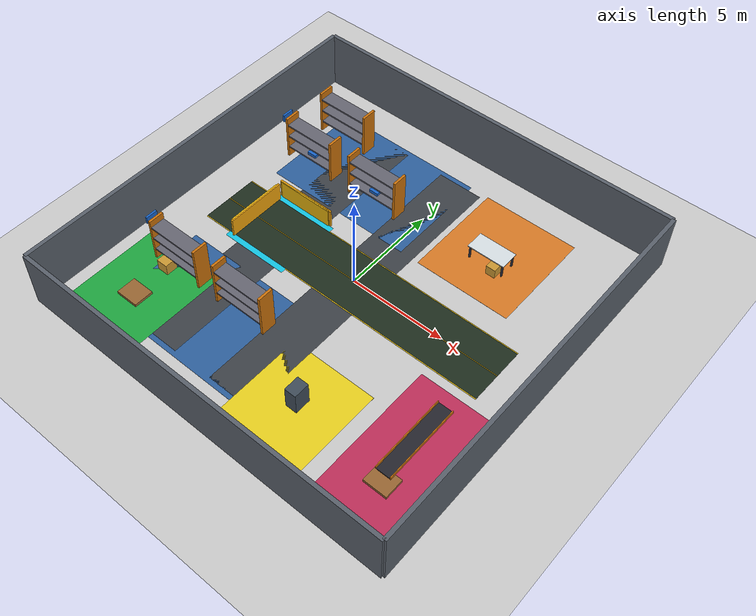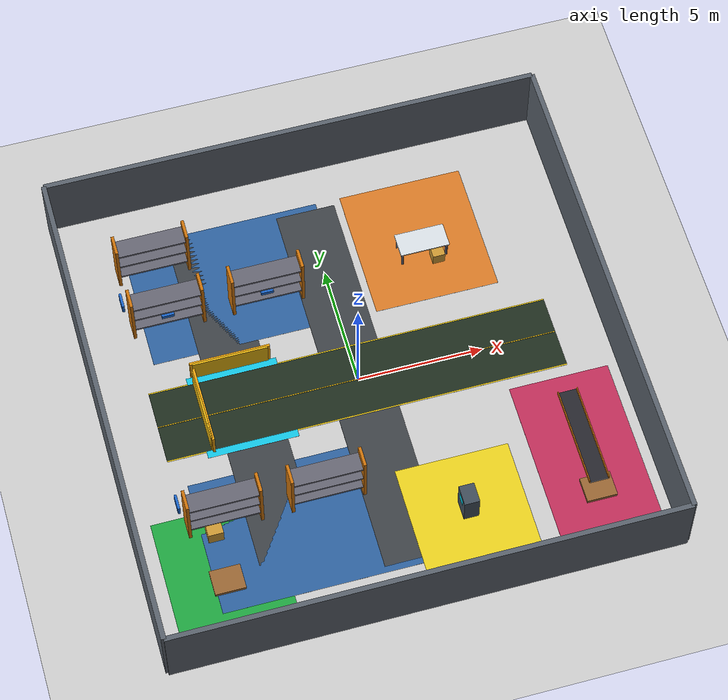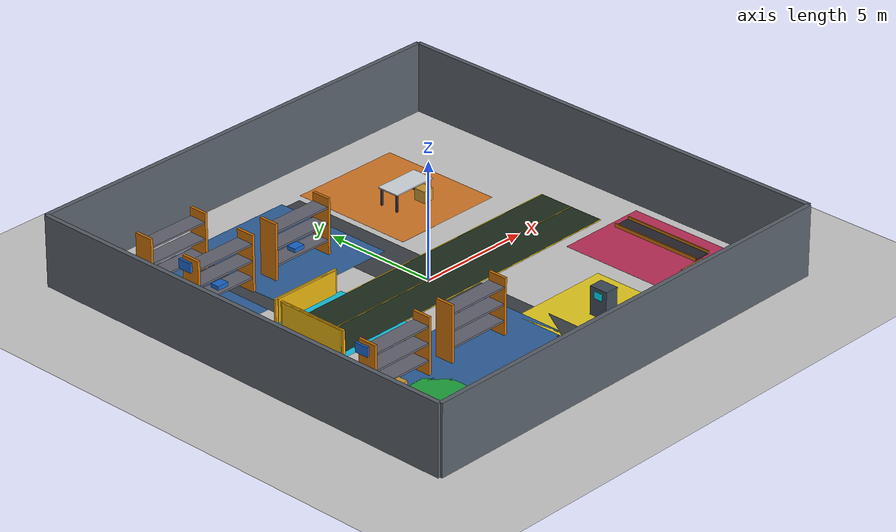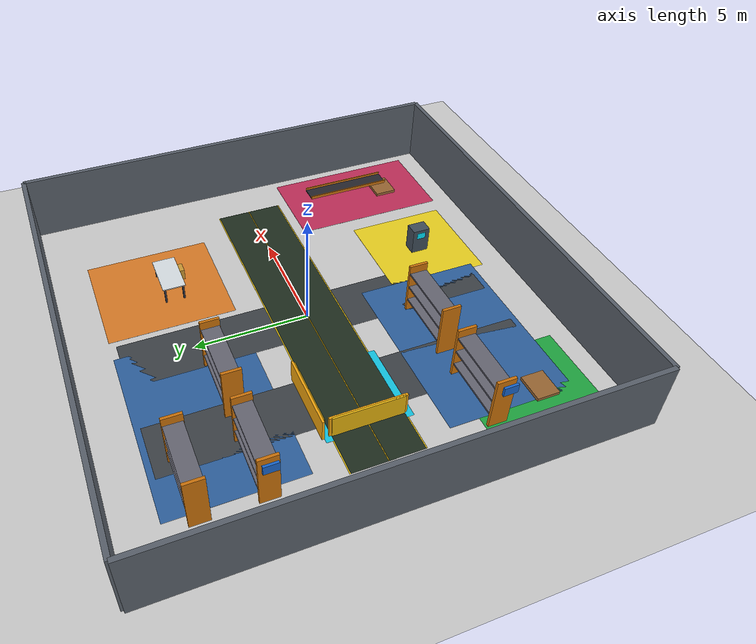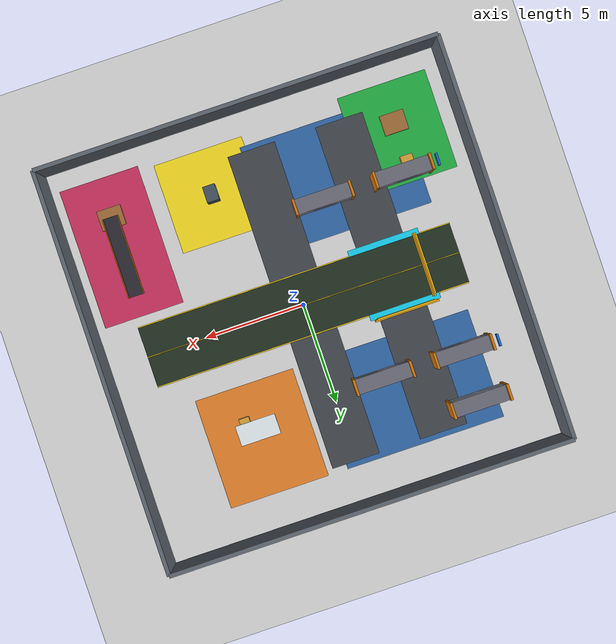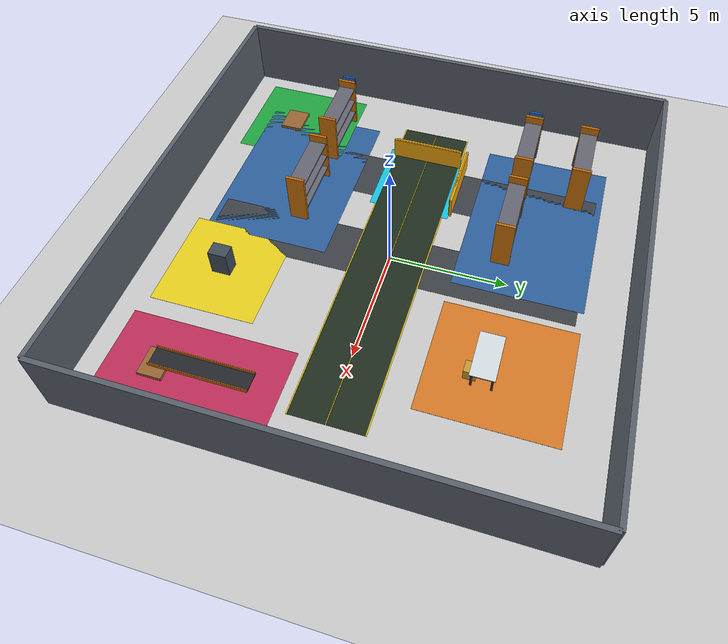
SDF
<?xml version="1.0"?>
<sdf version="1.7">
  <world name="warehouse">

    <!-- PHYSICS & SIMULATION SETTINGS -->
    <physics type="ode">
      <max_step_size>0.002</max_step_size>
      <real_time_update_rate>500</real_time_update_rate>
    </physics>

    <!-- Sun & Ground Plane -->
    <include>
      <uri>model://sun</uri>
    </include>

    <include>
      <uri>model://ground_plane</uri>
    </include>

    <!-- SCENE LIGHTING & AMBIENT ENVIRONMENT -->
    <scene>
      <ambient>0.38 0.38 0.42 1</ambient>
      <background>0.15 0.18 0.22 1</background>
      <shadows>true</shadows>
      <grid>false</grid>
    </scene>

    <!-- Overhead Industrial Directional & Spotlights -->
    <light name="light_main_aisle" type="directional">
      <pose>0 0 12 0 0 0</pose>
      <diffuse>0.88 0.88 0.92 1</diffuse>
      <specular>0.3 0.3 0.3 1</specular>
      <direction>-0.2 0.2 -1.0</direction>
      <cast_shadows>true</cast_shadows>
    </light>

    <light name="light_ur5e_workcell" type="spot">
      <pose>-4.65 0.0 5.5 0 0 0</pose>
      <diffuse>0.95 0.95 1.0 1</diffuse>
      <specular>0.6 0.6 0.6 1</specular>
      <direction>0 0 -1</direction>
      <attenuation>
        <range>12</range>
        <constant>0.4</constant>
        <linear>0.04</linear>
        <quadratic>0.008</quadratic>
      </attenuation>
      <spot>
        <inner_angle>0.8</inner_angle>
        <outer_angle>1.5</outer_angle>
        <falloff>1.0</falloff>
      </spot>
    </light>

    <light name="light_packing_zone" type="spot">
      <pose>4.0 5.0 5.5 0 0 0</pose>
      <diffuse>0.9 0.9 0.95 1</diffuse>
      <specular>0.4 0.4 0.4 1</specular>
      <direction>0 0 -1</direction>
      <attenuation>
        <range>10</range>
        <constant>0.5</constant>
        <linear>0.05</linear>
        <quadratic>0.01</quadratic>
      </attenuation>
      <spot>
        <inner_angle>0.8</inner_angle>
        <outer_angle>1.4</outer_angle>
        <falloff>1.0</falloff>
      </spot>
    </light>

    <!-- BOUNDARY WALLS (20m x 20m PERIMETER) -->
    <model name="wall_left">
      <static>true</static>
      <link name="link">
        <collision name="collision">
          <geometry><box><size>20 0.2 3.0</size></box></geometry>
        </collision>
        <visual name="visual">
          <geometry><box><size>20 0.2 3.0</size></box></geometry>
          <material>
            <ambient>0.25 0.28 0.32 1</ambient>
            <diffuse>0.35 0.38 0.42 1</diffuse>
          </material>
        </visual>
        <pose>0 -10 1.5 0 0 0</pose>
      </link>
    </model>

    <model name="wall_right">
      <static>true</static>
      <link name="link">
        <collision name="collision">
          <geometry><box><size>20 0.2 3.0</size></box></geometry>
        </collision>
        <visual name="visual">
          <geometry><box><size>20 0.2 3.0</size></box></geometry>
          <material>
            <ambient>0.25 0.28 0.32 1</ambient>
            <diffuse>0.35 0.38 0.42 1</diffuse>
          </material>
        </visual>
        <pose>0 10 1.5 0 0 0</pose>
      </link>
    </model>

    <model name="wall_front">
      <static>true</static>
      <link name="link">
        <collision name="collision">
          <geometry><box><size>0.2 20 3.0</size></box></geometry>
        </collision>
        <visual name="visual">
          <geometry><box><size>0.2 20 3.0</size></box></geometry>
          <material>
            <ambient>0.25 0.28 0.32 1</ambient>
            <diffuse>0.35 0.38 0.42 1</diffuse>
          </material>
        </visual>
        <pose>10 0 1.5 0 0 0</pose>
      </link>
    </model>

    <model name="wall_back">
      <static>true</static>
      <link name="link">
        <collision name="collision">
          <geometry><box><size>0.2 20 3.0</size></box></geometry>
        </collision>
        <visual name="visual">
          <geometry><box><size>0.2 20 3.0</size></box></geometry>
          <material>
            <ambient>0.25 0.28 0.32 1</ambient>
            <diffuse>0.35 0.38 0.42 1</diffuse>
          </material>
        </visual>
        <pose>-10 0 1.5 0 0 0</pose>
      </link>
    </model>

    <gui fullscreen="0">
      <camera name="user_camera">
        <pose>-10 -8 9 0 0.55 0.75</pose>
      </camera>
    </gui>

    <!-- SMART FULFILLMENT CENTER — FLOOR LANE MARKINGS -->

    <!-- Main AMR Aisle (Center Corridor: 16m x 3.0m) -->
    <model name="marking_main_aisle">
      <static>true</static>
      <pose>0 0 0.005 0 0 0</pose>
      <link name="link">
        <visual name="visual">
          <geometry><box><size>16.0 3.0 0.002</size></box></geometry>
          <material>
            <ambient>0.15 0.16 0.18 1</ambient>
            <diffuse>0.22 0.24 0.26 1</diffuse>
          </material>
        </visual>
      </link>
    </model>

    <!-- Main Aisle Safety Border Lines (Yellow) -->
    <model name="marking_aisle_line_north">
      <static>true</static>
      <pose>0 1.5 0.007 0 0 0</pose>
      <link name="link">
        <visual name="visual">
          <geometry><box><size>16.0 0.10 0.002</size></box></geometry>
          <material>
            <ambient>0.90 0.75 0.05 1</ambient>
            <diffuse>0.98 0.82 0.08 1</diffuse>
          </material>
        </visual>
      </link>
    </model>

    <model name="marking_aisle_line_south">
      <static>true</static>
      <pose>0 -1.5 0.007 0 0 0</pose>
      <link name="link">
        <visual name="visual">
          <geometry><box><size>16.0 0.10 0.002</size></box></geometry>
          <material>
            <ambient>0.90 0.75 0.05 1</ambient>
            <diffuse>0.98 0.82 0.08 1</diffuse>
          </material>
        </visual>
      </link>
    </model>

    <!-- Cross Aisles -->
    <model name="marking_cross_aisle_1">
      <static>true</static>
      <pose>0 0 0.006 0 0 0</pose>
      <link name="link">
        <visual name="visual">
          <geometry><box><size>2.4 16.0 0.002</size></box></geometry>
          <material>
            <ambient>0.18 0.19 0.22 1</ambient>
            <diffuse>0.24 0.26 0.28 1</diffuse>
          </material>
        </visual>
      </link>
    </model>

    <model name="marking_cross_aisle_2">
      <static>true</static>
      <pose>-4.5 0 0.006 0 0 0</pose>
      <link name="link">
        <visual name="visual">
          <geometry><box><size>2.4 16.0 0.002</size></box></geometry>
          <material>
            <ambient>0.18 0.19 0.22 1</ambient>
            <diffuse>0.24 0.26 0.28 1</diffuse>
          </material>
        </visual>
      </link>
    </model>

    <!-- Receiving Zone Floor Marking (Green Zone) -->
    <model name="marking_receiving_zone">
      <static>true</static>
      <pose>-7.0 -6.5 0.006 0 0 0</pose>
      <link name="link">
        <visual name="visual">
          <geometry><box><size>4.5 5.0 0.002</size></box></geometry>
          <material>
            <ambient>0.08 0.45 0.18 1</ambient>
            <diffuse>0.12 0.65 0.25 1</diffuse>
          </material>
        </visual>
      </link>
    </model>

    <!-- Picking Zone Floor Markings (Blue Accent Stripes) -->
    <model name="marking_picking_zone_north">
      <static>true</static>
      <pose>-3.5 5.5 0.006 0 0 0</pose>
      <link name="link">
        <visual name="visual">
          <geometry><box><size>8.0 5.5 0.002</size></box></geometry>
          <material>
            <ambient>0.12 0.25 0.45 1</ambient>
            <diffuse>0.18 0.38 0.62 1</diffuse>
          </material>
        </visual>
      </link>
    </model>

    <model name="marking_picking_zone_south">
      <static>true</static>
      <pose>-3.5 -5.5 0.006 0 0 0</pose>
      <link name="link">
        <visual name="visual">
          <geometry><box><size>8.0 5.5 0.002</size></box></geometry>
          <material>
            <ambient>0.12 0.25 0.45 1</ambient>
            <diffuse>0.18 0.38 0.62 1</diffuse>
          </material>
        </visual>
      </link>
    </model>

    <!-- Packing Zone Floor Marking (Orange Zone) -->
    <model name="marking_packing_zone">
      <static>true</static>
      <pose>4.0 5.5 0.006 0 0 0</pose>
      <link name="link">
        <visual name="visual">
          <geometry><box><size>5.0 5.5 0.002</size></box></geometry>
          <material>
            <ambient>0.65 0.35 0.10 1</ambient>
            <diffuse>0.85 0.48 0.15 1</diffuse>
          </material>
        </visual>
      </link>
    </model>

    <!-- Delivery Staging Zone Floor Marking (Purple/Red Zone) -->
    <model name="marking_delivery_zone">
      <static>true</static>
      <pose>7.5 -5.5 0.006 0 0 0</pose>
      <link name="link">
        <visual name="visual">
          <geometry><box><size>4.0 7.0 0.002</size></box></geometry>
          <material>
            <ambient>0.55 0.12 0.25 1</ambient>
            <diffuse>0.75 0.18 0.35 1</diffuse>
          </material>
        </visual>
      </link>
    </model>

    <!-- Charging Station Zone Marking (Yellow Hazard Stripes) -->
    <model name="marking_charging_zone">
      <static>true</static>
      <pose>2.5 -6.5 0.006 0 0 0</pose>
      <link name="link">
        <visual name="visual">
          <geometry><box><size>4.5 4.5 0.002</size></box></geometry>
          <material>
            <ambient>0.75 0.65 0.08 1</ambient>
            <diffuse>0.92 0.82 0.12 1</diffuse>
          </material>
        </visual>
      </link>
    </model>

    <!-- TRON1 -> UR5e HANDOVER WORKCELL BOUNDARY (Cyan/Blue High-Contrast) -->
    <model name="marking_handover_workcell">
      <static>true</static>
      <pose>-4.65 0.0 0.008 0 0 0</pose>
      <link name="link">
        <visual name="visual">
          <geometry><box><size>3.6 3.6 0.002</size></box></geometry>
          <material>
            <ambient>0.05 0.55 0.65 1</ambient>
            <diffuse>0.08 0.78 0.90 1</diffuse>
          </material>
        </visual>
      </link>
    </model>

    <!-- Handover Target Pad (Bright Yellow Circle Target) -->
    <model name="marking_handover_target_pad">
      <static>true</static>
      <pose>-4.65 0.0 0.010 0 0 0</pose>
      <link name="link">
        <visual name="visual">
          <geometry><cylinder><radius>0.48</radius><length>0.004</length></cylinder></geometry>
          <material>
            <ambient>0.95 0.85 0.05 1</ambient>
            <diffuse>1.00 0.90 0.10 1</diffuse>
          </material>
        </visual>
      </link>
    </model>

    <!-- INDUSTRIAL SHELVES & RACK SYSTEMS (PICKING & STORAGE ZONES) -->

    <!-- Rack Row A1 (-6.5, 4.5) -->
    <model name="shelf_a1">
      <static>true</static>
      <pose>-6.5 4.5 0 0 0 0</pose>
      <link name="collision_link">
        <collision name="collision">
          <geometry><box><size>3.0 0.8 2.4</size></box></geometry>
        </collision>
      </link>
      <link name="frame_left"><visual name="visual"><geometry><box><size>0.12 0.8 2.4</size></box></geometry><pose>-1.4 0 1.2 0 0 0</pose><material><ambient>0.80 0.45 0.04 1</ambient></material></visual></link>
      <link name="frame_right"><visual name="visual"><geometry><box><size>0.12 0.8 2.4</size></box></geometry><pose>1.4 0 1.2 0 0 0</pose><material><ambient>0.80 0.45 0.04 1</ambient></material></visual></link>
      <link name="shelf_beam_1"><visual name="visual"><geometry><box><size>2.8 0.75 0.08</size></box></geometry><pose>0 0 0.6 0 0 0</pose><material><ambient>0.4 0.4 0.45 1</ambient></material></visual></link>
      <link name="shelf_beam_2"><visual name="visual"><geometry><box><size>2.8 0.75 0.08</size></box></geometry><pose>0 0 1.3 0 0 0</pose><material><ambient>0.4 0.4 0.45 1</ambient></material></visual></link>
      <link name="shelf_beam_3"><visual name="visual"><geometry><box><size>2.8 0.75 0.08</size></box></geometry><pose>0 0 2.0 0 0 0</pose><material><ambient>0.4 0.4 0.45 1</ambient></material></visual></link>
    </model>

    <!-- Rack Row A2 (-2.5, 4.5) -->
    <model name="shelf_a2">
      <static>true</static>
      <pose>-2.5 4.5 0 0 0 0</pose>
      <link name="collision_link">
        <collision name="collision">
          <geometry><box><size>3.0 0.8 2.4</size></box></geometry>
        </collision>
      </link>
      <link name="frame_left"><visual name="visual"><geometry><box><size>0.12 0.8 2.4</size></box></geometry><pose>-1.4 0 1.2 0 0 0</pose><material><ambient>0.80 0.45 0.04 1</ambient></material></visual></link>
      <link name="frame_right"><visual name="visual"><geometry><box><size>0.12 0.8 2.4</size></box></geometry><pose>1.4 0 1.2 0 0 0</pose><material><ambient>0.80 0.45 0.04 1</ambient></material></visual></link>
      <link name="shelf_beam_1"><visual name="visual"><geometry><box><size>2.8 0.75 0.08</size></box></geometry><pose>0 0 0.6 0 0 0</pose><material><ambient>0.4 0.4 0.45 1</ambient></material></visual></link>
      <link name="shelf_beam_2"><visual name="visual"><geometry><box><size>2.8 0.75 0.08</size></box></geometry><pose>0 0 1.3 0 0 0</pose><material><ambient>0.4 0.4 0.45 1</ambient></material></visual></link>
      <link name="shelf_beam_3"><visual name="visual"><geometry><box><size>2.8 0.75 0.08</size></box></geometry><pose>0 0 2.0 0 0 0</pose><material><ambient>0.4 0.4 0.45 1</ambient></material></visual></link>
    </model>

    <!-- Rack Row A3 (-6.5, 7.0) -->
    <model name="shelf_a3">
      <static>true</static>
      <pose>-6.5 7.0 0 0 0 0</pose>
      <link name="collision_link">
        <collision name="collision">
          <geometry><box><size>3.0 0.8 2.4</size></box></geometry>
        </collision>
      </link>
      <link name="frame_left"><visual name="visual"><geometry><box><size>0.12 0.8 2.4</size></box></geometry><pose>-1.4 0 1.2 0 0 0</pose><material><ambient>0.80 0.45 0.04 1</ambient></material></visual></link>
      <link name="frame_right"><visual name="visual"><geometry><box><size>0.12 0.8 2.4</size></box></geometry><pose>1.4 0 1.2 0 0 0</pose><material><ambient>0.80 0.45 0.04 1</ambient></material></visual></link>
      <link name="shelf_beam_1"><visual name="visual"><geometry><box><size>2.8 0.75 0.08</size></box></geometry><pose>0 0 0.6 0 0 0</pose><material><ambient>0.4 0.4 0.45 1</ambient></material></visual></link>
      <link name="shelf_beam_2"><visual name="visual"><geometry><box><size>2.8 0.75 0.08</size></box></geometry><pose>0 0 1.3 0 0 0</pose><material><ambient>0.4 0.4 0.45 1</ambient></material></visual></link>
      <link name="shelf_beam_3"><visual name="visual"><geometry><box><size>2.8 0.75 0.08</size></box></geometry><pose>0 0 2.0 0 0 0</pose><material><ambient>0.4 0.4 0.45 1</ambient></material></visual></link>
    </model>

    <!-- Rack Row B1 (-6.5, -4.5) -->
    <model name="shelf_b1">
      <static>true</static>
      <pose>-6.5 -4.5 0 0 0 0</pose>
      <link name="collision_link">
        <collision name="collision">
          <geometry><box><size>3.0 0.8 2.4</size></box></geometry>
        </collision>
      </link>
      <link name="frame_left"><visual name="visual"><geometry><box><size>0.12 0.8 2.4</size></box></geometry><pose>-1.4 0 1.2 0 0 0</pose><material><ambient>0.80 0.45 0.04 1</ambient></material></visual></link>
      <link name="frame_right"><visual name="visual"><geometry><box><size>0.12 0.8 2.4</size></box></geometry><pose>1.4 0 1.2 0 0 0</pose><material><ambient>0.80 0.45 0.04 1</ambient></material></visual></link>
      <link name="shelf_beam_1"><visual name="visual"><geometry><box><size>2.8 0.75 0.08</size></box></geometry><pose>0 0 0.6 0 0 0</pose><material><ambient>0.4 0.4 0.45 1</ambient></material></visual></link>
      <link name="shelf_beam_2"><visual name="visual"><geometry><box><size>2.8 0.75 0.08</size></box></geometry><pose>0 0 1.3 0 0 0</pose><material><ambient>0.4 0.4 0.45 1</ambient></material></visual></link>
      <link name="shelf_beam_3"><visual name="visual"><geometry><box><size>2.8 0.75 0.08</size></box></geometry><pose>0 0 2.0 0 0 0</pose><material><ambient>0.4 0.4 0.45 1</ambient></material></visual></link>
    </model>

    <!-- Rack Row B2 (-2.5, -4.5) -->
    <model name="shelf_b2">
      <static>true</static>
      <pose>-2.5 -4.5 0 0 0 0</pose>
      <link name="collision_link">
        <collision name="collision">
          <geometry><box><size>3.0 0.8 2.4</size></box></geometry>
        </collision>
      </link>
      <link name="frame_left"><visual name="visual"><geometry><box><size>0.12 0.8 2.4</size></box></geometry><pose>-1.4 0 1.2 0 0 0</pose><material><ambient>0.80 0.45 0.04 1</ambient></material></visual></link>
      <link name="frame_right"><visual name="visual"><geometry><box><size>0.12 0.8 2.4</size></box></geometry><pose>1.4 0 1.2 0 0 0</pose><material><ambient>0.80 0.45 0.04 1</ambient></material></visual></link>
      <link name="shelf_beam_1"><visual name="visual"><geometry><box><size>2.8 0.75 0.08</size></box></geometry><pose>0 0 0.6 0 0 0</pose><material><ambient>0.4 0.4 0.45 1</ambient></material></visual></link>
      <link name="shelf_beam_2"><visual name="visual"><geometry><box><size>2.8 0.75 0.08</size></box></geometry><pose>0 0 1.3 0 0 0</pose><material><ambient>0.4 0.4 0.45 1</ambient></material></visual></link>
      <link name="shelf_beam_3"><visual name="visual"><geometry><box><size>2.8 0.75 0.08</size></box></geometry><pose>0 0 2.0 0 0 0</pose><material><ambient>0.4 0.4 0.45 1</ambient></material></visual></link>
    </model>

    <!-- Rack Sign Markers -->
    <model name="sign_rack_a">
      <static>true</static>
      <pose>-8.2 4.5 2.2 0 0 0</pose>
      <link name="link">
        <visual name="visual">
          <geometry><box><size>0.1 0.6 0.4</size></box></geometry>
          <material><ambient>0.1 0.4 0.8 1</ambient></material>
        </visual>
      </link>
    </model>

    <model name="sign_rack_b">
      <static>true</static>
      <pose>-8.2 -4.5 2.2 0 0 0</pose>
      <link name="link">
        <visual name="visual">
          <geometry><box><size>0.1 0.6 0.4</size></box></geometry>
          <material><ambient>0.1 0.4 0.8 1</ambient></material>
        </visual>
      </link>
    </model>

    <!-- WORKSTATION TABLES, CONVEYOR & SAFETY GUARD RAILS -->

    <!-- Packing Table (Packing Zone x=4.0, y=5.0) -->
    <model name="table_packing">
      <static>true</static>
      <pose>4.0 5.0 0.0 0 0 0</pose>
      <link name="link">
        <collision name="collision">
          <geometry><box><size>2.0 1.0 0.8</size></box></geometry>
          <pose>0 0 0.4 0 0 0</pose>
        </collision>
        <visual name="table_top">
          <geometry><box><size>2.0 1.0 0.05</size></box></geometry>
          <pose>0 0 0.775 0 0 0</pose>
          <material>
            <ambient>0.70 0.72 0.75 1</ambient>
            <diffuse>0.85 0.88 0.90 1</diffuse>
          </material>
        </visual>
        <visual name="table_leg_1"><geometry><box><size>0.08 0.08 0.75</size></box></geometry><pose>-0.9 -0.4 0.375 0 0 0</pose><material><ambient>0.2 0.2 0.25 1</ambient></material></visual>
        <visual name="table_leg_2"><geometry><box><size>0.08 0.08 0.75</size></box></geometry><pose>0.9 -0.4 0.375 0 0 0</pose><material><ambient>0.2 0.2 0.25 1</ambient></material></visual>
        <visual name="table_leg_3"><geometry><box><size>0.08 0.08 0.75</size></box></geometry><pose>-0.9 0.4 0.375 0 0 0</pose><material><ambient>0.2 0.2 0.25 1</ambient></material></visual>
        <visual name="table_leg_4"><geometry><box><size>0.08 0.08 0.75</size></box></geometry><pose>0.9 0.4 0.375 0 0 0</pose><material><ambient>0.2 0.2 0.25 1</ambient></material></visual>
      </link>
    </model>

    <!-- Outbound Conveyor Model (Delivery Zone x=7.5, y=-5.0) -->
    <model name="conveyor_delivery">
      <static>true</static>
      <pose>7.5 -5.0 0.0 0 0 1.5708</pose>
      <link name="link">
        <collision name="collision">
          <geometry><box><size>4.0 0.8 0.65</size></box></geometry>
          <pose>0 0 0.325 0 0 0</pose>
        </collision>
        <visual name="belt">
          <geometry><box><size>4.0 0.7 0.04</size></box></geometry>
          <pose>0 0 0.63 0 0 0</pose>
          <material>
            <ambient>0.10 0.10 0.12 1</ambient>
            <diffuse>0.15 0.15 0.18 1</diffuse>
          </material>
        </visual>
        <visual name="side_rail_left"><geometry><box><size>4.0 0.04 0.15</size></box></geometry><pose>0 -0.38 0.68 0 0 0</pose><material><ambient>0.8 0.45 0.05 1</ambient></material></visual>
        <visual name="side_rail_right"><geometry><box><size>4.0 0.04 0.15</size></box></geometry><pose>0 0.38 0.68 0 0 0</pose><material><ambient>0.8 0.45 0.05 1</ambient></material></visual>
      </link>
    </model>

    <!-- AMR Dock Charger (Charging Station x=2.5, y=-6.5) -->
    <model name="amr_charger_dock">
      <static>true</static>
      <pose>2.5 -6.5 0.0 0 0 0</pose>
      <link name="link">
        <collision name="collision">
          <geometry><box><size>0.6 0.8 1.2</size></box></geometry>
          <pose>0 0 0.6 0 0 0</pose>
        </collision>
        <visual name="housing">
          <geometry><box><size>0.6 0.8 1.2</size></box></geometry>
          <pose>0 0 0.6 0 0 0</pose>
          <material>
            <ambient>0.15 0.18 0.22 1</ambient>
            <diffuse>0.25 0.30 0.35 1</diffuse>
          </material>
        </visual>
        <visual name="screen">
          <geometry><box><size>0.02 0.4 0.3</size></box></geometry>
          <pose>-0.301 0 0.9 0 0 0</pose>
          <material>
            <ambient>0.0 0.8 0.9 1</ambient>
            <diffuse>0.0 0.9 1.0 1</diffuse>
          </material>
        </visual>
      </link>
    </model>

    <!-- Safety Barriers around UR5e Workcell -->
    <model name="safety_barrier_west">
      <static>true</static>
      <pose>-6.2 0.0 0.0 0 0 1.5708</pose>
      <link name="link">
        <collision name="collision"><geometry><box><size>3.0 0.1 1.0</size></box></geometry><pose>0 0 0.5 0 0 0</pose></collision>
        <visual name="rail"><geometry><box><size>3.0 0.08 1.0</size></box></geometry><pose>0 0 0.5 0 0 0</pose><material><ambient>0.9 0.7 0.05 1</ambient></material></visual>
      </link>
    </model>

    <model name="safety_barrier_north">
      <static>true</static>
      <pose>-4.65 1.8 0.0 0 0 0</pose>
      <link name="link">
        <collision name="collision"><geometry><box><size>3.0 0.1 1.0</size></box></geometry><pose>0 0 0.5 0 0 0</pose></collision>
        <visual name="rail"><geometry><box><size>3.0 0.08 1.0</size></box></geometry><pose>0 0 0.5 0 0 0</pose><material><ambient>0.9 0.7 0.05 1</ambient></material></visual>
      </link>
    </model>

    <!-- STAGING OBJECTS, PALLETS, TOTES & CARGO BOXES -->

    <!-- Pallets -->
    <model name="pallet_1">
      <static>true</static>
      <pose>-7.0 -7.0 0.0 0 0 0</pose>
      <link name="link">
        <collision name="collision"><geometry><box><size>1.2 1.0 0.15</size></box></geometry><pose>0 0 0.075 0 0 0</pose></collision>
        <visual name="visual"><geometry><box><size>1.2 1.0 0.15</size></box></geometry><pose>0 0 0.075 0 0 0</pose><material><ambient>0.6 0.4 0.2 1</ambient></material></visual>
      </link>
    </model>

    <model name="pallet_2">
      <static>true</static>
      <pose>7.5 -7.0 0.0 0 0 0</pose>
      <link name="link">
        <collision name="collision"><geometry><box><size>1.2 1.0 0.15</size></box></geometry><pose>0 0 0.075 0 0 0</pose></collision>
        <visual name="visual"><geometry><box><size>1.2 1.0 0.15</size></box></geometry><pose>0 0 0.075 0 0 0</pose><material><ambient>0.6 0.4 0.2 1</ambient></material></visual>
      </link>
    </model>

    <!-- Industrial Totes -->
    <model name="tote_1">
      <static>true</static>
      <pose>-6.5 4.5 0.65 0 0 0</pose>
      <link name="link">
        <visual name="visual"><geometry><box><size>0.5 0.4 0.3</size></box></geometry><material><ambient>0.1 0.4 0.8 1</ambient></material></visual>
      </link>
    </model>

    <model name="tote_2">
      <static>true</static>
      <pose>-2.5 4.5 0.65 0 0 0</pose>
      <link name="link">
        <visual name="visual"><geometry><box><size>0.5 0.4 0.3</size></box></geometry><material><ambient>0.1 0.4 0.8 1</ambient></material></visual>
      </link>
    </model>

    <!-- Cargo Cardboard Boxes -->
    <model name="box_1">
      <static>true</static>
      <pose>-7.0 -5.0 0.3 0 0 0</pose>
      <link name="link">
        <collision name="collision"><geometry><box><size>0.6 0.6 0.6</size></box></geometry></collision>
        <visual name="visual"><geometry><box><size>0.6 0.6 0.6</size></box></geometry><material><ambient>0.80 0.60 0.20 1</ambient></material></visual>
      </link>
    </model>

    <model name="box_2">
      <static>true</static>
      <pose>4.5 4.5 0.3 0 0 0</pose>
      <link name="link">
        <collision name="collision"><geometry><box><size>0.5 0.5 0.5</size></box></geometry></collision>
        <visual name="visual"><geometry><box><size>0.5 0.5 0.5</size></box></geometry><material><ambient>0.80 0.60 0.20 1</ambient></material></visual>
      </link>
    </model>

    <!-- ROBOT LANE / SAFETY ZONE -->
    <model name="marking_robot_lane">
      <static>true</static>
      <pose>0 0 0.012 0 0 0</pose>
      <link name="link">
        <visual name="visual">
          <geometry><box><size>16.0 3.0 0.003</size></box></geometry>
          <material><ambient>0.12 0.18 0.12 1</ambient></material>
        </visual>
      </link>
    </model>

    <model name="marking_robot_lane_center">
      <static>true</static>
      <pose>0 0 0.016 0 0 0</pose>
      <link name="link">
        <visual name="visual">
          <geometry><box><size>16.0 0.035 0.004</size></box></geometry>
          <material><ambient>0.95 0.75 0.05 1</ambient></material>
        </visual>
      </link>
    </model>

    <model name="safety_zone_handover_west">
      <static>true</static>
      <pose>-6.15 0 0.5 0 0 1.5708</pose>
      <link name="link">
        <visual name="visual">
          <geometry><box><size>3.2 0.10 1.0</size></box></geometry>
          <material><ambient>0.95 0.65 0.05 1</ambient></material>
        </visual>
      </link>
    </model>

    <model name="safety_zone_handover_north">
      <static>true</static>
      <pose>-4.65 1.85 0.5 0 0 0</pose>
      <link name="link">
        <visual name="visual">
          <geometry><box><size>3.2 0.10 1.0</size></box></geometry>
          <material><ambient>0.95 0.65 0.05 1</ambient></material>
        </visual>
      </link>
    </model>

  </world>
</sdf>
